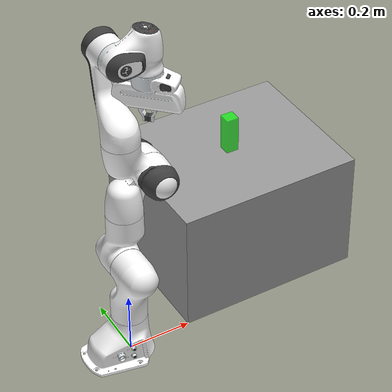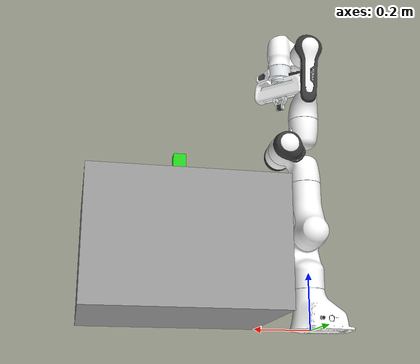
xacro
<?xml version="1.0"?>
<robot name="scene" xmlns:xacro="http://www.ros.org/wiki/xacro">
  <!-- Panda’yı doğrudan tek kaynaktan üret -->
  <xacro:include filename="$(find moveit_resources_panda_description)/urdf/panda.urdf.xacro"/>

  <!-- DİKKAT: URDF içinde 'world' parent destekli sabitleme standart değil.
       Bu yüzden sabitlemeyi SDF dünyasında yapacağız. -->
</robot>

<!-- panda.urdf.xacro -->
<robot name="panda_scene" xmlns:xacro="http://www.ros.org/wiki/xacro">

  <!-- ======= SAHNE PARAMETRELERİ (ARG'SIZ, DOĞRUDAN KULLAN) ======= -->
  <!-- Masa boyutları (L W H) ve merkezi -->
  <xacro:property name="table_l" value="0.60"/>
  <xacro:property name="table_w" value="0.50"/>
  <xacro:property name="table_h" value="0.40"/>
  <xacro:property name="table_x" value="0.50"/>
  <xacro:property name="table_y" value="0.25"/>
  <xacro:property name="table_z" value="0.20"/>   <!-- merkezin z'si = H/2 -->

  <!-- Kutu boyutları (L W H) ve merkezi (masanın üstünde) -->
  <xacro:property name="box_l" value="0.04"/>
  <xacro:property name="box_w" value="0.04"/>
  <xacro:property name="box_h" value="0.12"/>
  <xacro:property name="box_x" value="0.50"/>
  <xacro:property name="box_y" value="0.25"/>
  <xacro:property name="box_z" value="0.46"/>  <!-- table_top + box_h/2 -->

  <!-- Dünya çerçevesi -->
  <link name="world"/>

  <!-- =========================
       PANDA ROBOT (özet URDF)
       ========================= -->
  <link name="panda_link0">
    <visual><geometry><mesh filename="package://moveit_resources_panda_description/meshes/visual/link0.dae"/></geometry></visual>
    <collision><geometry><mesh filename="package://moveit_resources_panda_description/meshes/collision/link0.stl"/></geometry></collision>
  </link>

  <!-- world -> panda_link0 -->
  <joint name="world_to_panda" type="fixed">
    <parent link="world"/>
    <child  link="panda_link0"/>
    <origin xyz="0 0 0" rpy="0 0 0"/>
  </joint>

  <link name="panda_link1">
    <visual><geometry><mesh filename="package://moveit_resources_panda_description/meshes/visual/link1.dae"/></geometry></visual>
    <collision><geometry><mesh filename="package://moveit_resources_panda_description/meshes/collision/link1.stl"/></geometry></collision>
  </link>
  <joint name="panda_joint1" type="revolute">
    <parent link="panda_link0"/><child link="panda_link1"/>
    <origin xyz="0 0 0.333" rpy="0 0 0"/>
    <axis xyz="0 0 1"/>
    <limit effort="87" lower="-2.9671" upper="2.9671" velocity="2.3925"/>
    <safety_controller k_position="100.0" k_velocity="40.0" soft_lower_limit="-2.8973" soft_upper_limit="2.8973"/>
  </joint>

  <link name="panda_link2">
    <visual><geometry><mesh filename="package://moveit_resources_panda_description/meshes/visual/link2.dae"/></geometry></visual>
    <collision><geometry><mesh filename="package://moveit_resources_panda_description/meshes/collision/link2.stl"/></geometry></collision>
  </link>
  <joint name="panda_joint2" type="revolute">
    <parent link="panda_link1"/><child link="panda_link2"/>
    <origin xyz="0 0 0" rpy="-1.57079632679 0 0"/>
    <axis xyz="0 0 1"/>
    <limit effort="87" lower="-1.8326" upper="1.8326" velocity="2.3925"/>
    <safety_controller k_position="100.0" k_velocity="40.0" soft_lower_limit="-1.7628" soft_upper_limit="1.7628"/>
  </joint>

  <link name="panda_link3">
    <visual><geometry><mesh filename="package://moveit_resources_panda_description/meshes/visual/link3.dae"/></geometry></visual>
    <collision><geometry><mesh filename="package://moveit_resources_panda_description/meshes/collision/link3.stl"/></geometry></collision>
  </link>
  <joint name="panda_joint3" type="revolute">
    <parent link="panda_link2"/><child link="panda_link3"/>
    <origin xyz="0 -0.316 0" rpy="1.57079632679 0 0"/>
    <axis xyz="0 0 1"/>
    <limit effort="87" lower="-2.9671" upper="2.9671" velocity="2.3925"/>
    <safety_controller k_position="100.0" k_velocity="40.0" soft_lower_limit="-2.8973" soft_upper_limit="2.8973"/>
  </joint>

  <link name="panda_link4">
    <visual><geometry><mesh filename="package://moveit_resources_panda_description/meshes/visual/link4.dae"/></geometry></visual>
    <collision><geometry><mesh filename="package://moveit_resources_panda_description/meshes/collision/link4.stl"/></geometry></collision>
  </link>
  <joint name="panda_joint4" type="revolute">
    <parent link="panda_link3"/><child link="panda_link4"/>
    <origin xyz="0.0825 0 0" rpy="1.57079632679 0 0"/>
    <axis xyz="0 0 1"/>
    <limit effort="87" lower="-3.1416" upper="0.0873" velocity="2.3925"/>
    <safety_controller k_position="100.0" k_velocity="40.0" soft_lower_limit="-3.0718" soft_upper_limit="0.0175"/>
  </joint>

  <link name="panda_link5">
    <visual><geometry><mesh filename="package://moveit_resources_panda_description/meshes/visual/link5.dae"/></geometry></visual>
    <collision><geometry><mesh filename="package://moveit_resources_panda_description/meshes/collision/link5.stl"/></geometry></collision>
  </link>
  <joint name="panda_joint5" type="revolute">
    <parent link="panda_link4"/><child link="panda_link5"/>
    <origin xyz="-0.0825 0.384 0" rpy="-1.57079632679 0 0"/>
    <axis xyz="0 0 1"/>
    <limit effort="12" lower="-2.9671" upper="2.9671" velocity="2.8710"/>
    <safety_controller k_position="100.0" k_velocity="40.0" soft_lower_limit="-2.8973" soft_upper_limit="2.8973"/>
  </joint>

  <link name="panda_link6">
    <visual><geometry><mesh filename="package://moveit_resources_panda_description/meshes/visual/link6.dae"/></geometry></visual>
    <collision><geometry><mesh filename="package://moveit_resources_panda_description/meshes/collision/link6.stl"/></geometry></collision>
  </link>
  <joint name="panda_joint6" type="revolute">
    <parent link="panda_link5"/><child link="panda_link6"/>
    <origin xyz="0 0 0" rpy="1.57079632679 0 0"/>
    <axis xyz="0 0 1"/>
    <limit effort="12" lower="-0.0873" upper="3.8223" velocity="2.8710"/>
    <safety_controller k_position="100.0" k_velocity="40.0" soft_lower_limit="-0.0175" soft_upper_limit="3.7525"/>
  </joint>

  <link name="panda_link7">
    <visual><geometry><mesh filename="package://moveit_resources_panda_description/meshes/visual/link7.dae"/></geometry></visual>
    <collision><geometry><mesh filename="package://moveit_resources_panda_description/meshes/collision/link7.stl"/></geometry></collision>
  </link>
  <joint name="panda_joint7" type="revolute">
    <parent link="panda_link6"/><child link="panda_link7"/>
    <origin xyz="0.088 0 0" rpy="1.57079632679 0 0"/>
    <axis xyz="0 0 1"/>
    <limit effort="12" lower="-2.9671" upper="2.9671" velocity="2.8710"/>
    <safety_controller k_position="100.0" k_velocity="40.0" soft_lower_limit="-2.8973" soft_upper_limit="2.8973"/>
  </joint>

  <link name="panda_link8"/>
  <joint name="panda_joint8" type="fixed">
    <parent link="panda_link7"/><child link="panda_link8"/>
    <origin xyz="0 0 0.107" rpy="0 0 0"/>
  </joint>

  <link name="panda_hand">
    <visual><geometry><mesh filename="package://moveit_resources_panda_description/meshes/visual/hand.dae"/></geometry></visual>
    <collision><geometry><mesh filename="package://moveit_resources_panda_description/meshes/collision/hand.stl"/></geometry></collision>
  </link>
  <joint name="panda_hand_joint" type="fixed">
    <parent link="panda_link8"/><child link="panda_hand"/>
    <origin xyz="0 0 0" rpy="0 0 -0.785398163397"/>
  </joint>

  <link name="panda_leftfinger">
    <visual><geometry><mesh filename="package://moveit_resources_panda_description/meshes/visual/finger.dae"/></geometry></visual>
    <collision><geometry><mesh filename="package://moveit_resources_panda_description/meshes/collision/finger.stl"/></geometry></collision>
  </link>
  <link name="panda_rightfinger">
    <visual>
      <origin xyz="0 0 0" rpy="0 0 3.14159265359"/>
      <geometry><mesh filename="package://moveit_resources_panda_description/meshes/visual/finger.dae"/></geometry>
    </visual>
    <collision>
      <origin xyz="0 0 0" rpy="0 0 3.14159265359"/>
      <geometry><mesh filename="package://moveit_resources_panda_description/meshes/collision/finger.stl"/></geometry>
    </collision>
  </link>
  <joint name="panda_finger_joint1" type="prismatic">
    <parent link="panda_hand"/><child link="panda_leftfinger"/>
    <origin xyz="0 0 0.0584" rpy="0 0 0"/>
    <axis xyz="0 1 0"/>
    <limit effort="20" lower="0.0" upper="0.04" velocity="0.2"/>
  </joint>
  <joint name="panda_finger_joint2" type="prismatic">
    <parent link="panda_hand"/><child link="panda_rightfinger"/>
    <origin xyz="0 0 0.0584" rpy="0 0 0"/>
    <axis xyz="0 -1 0"/>
    <limit effort="20" lower="0.0" upper="0.04" velocity="0.2"/>
    <mimic joint="panda_finger_joint1"/>
  </joint>

  <!-- =========================
       SAHNE: MASA + KUTU
       ========================= -->
  <joint name="table_joint" type="fixed">
    <parent link="world"/>
    <child  link="table_link"/>
    <origin xyz="${table_x} ${table_y} ${table_z}" rpy="0 0 0"/>
  </joint>
  <link name="table_link">
    <visual>
      <geometry><box size="${table_l} ${table_w} ${table_h}"/></geometry>
      <material name="grey"><color rgba="0.6 0.6 0.6 1.0"/></material>
    </visual>
    <collision><geometry><box size="${table_l} ${table_w} ${table_h}"/></geometry></collision>
  </link>

  <joint name="box_joint" type="fixed">
    <parent link="world"/>
    <child  link="box_link"/>
    <origin xyz="${box_x} ${box_y} ${box_z}" rpy="0 0 0"/>
  </joint>
  <link name="box_link">
    <visual>
      <geometry><box size="${box_l} ${box_w} ${box_h}"/></geometry>
      <material name="green"><color rgba="0.0 1.0 0.0 0.7"/></material>
    </visual>
    <collision><geometry><box size="${box_l} ${box_w} ${box_h}"/></geometry></collision>
  </link>

</robot>
